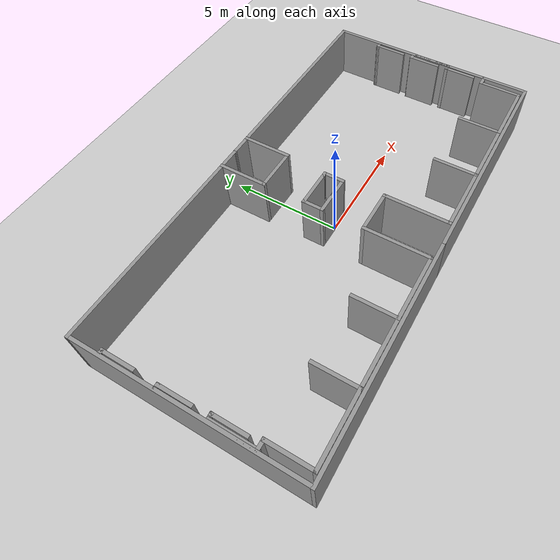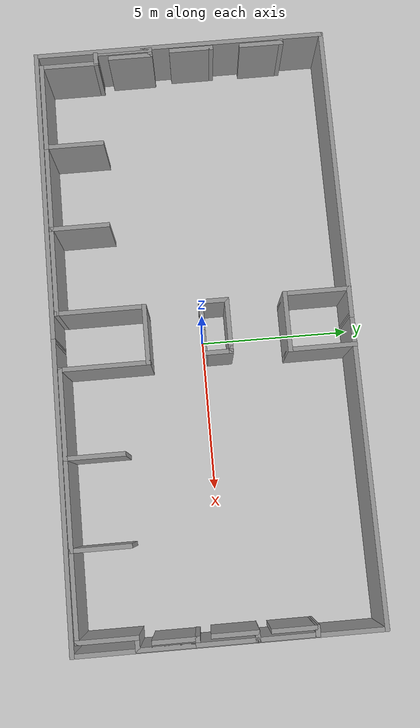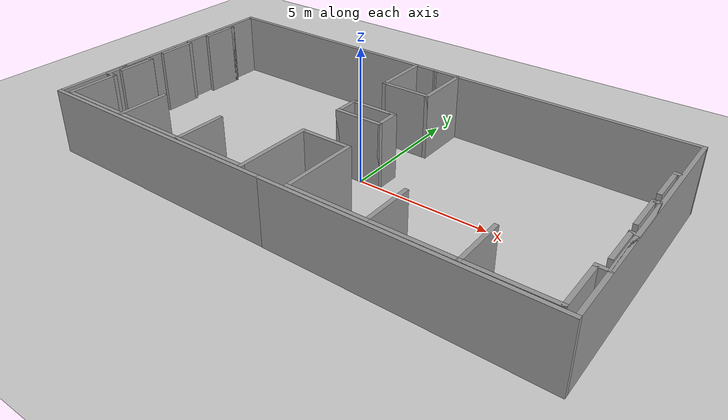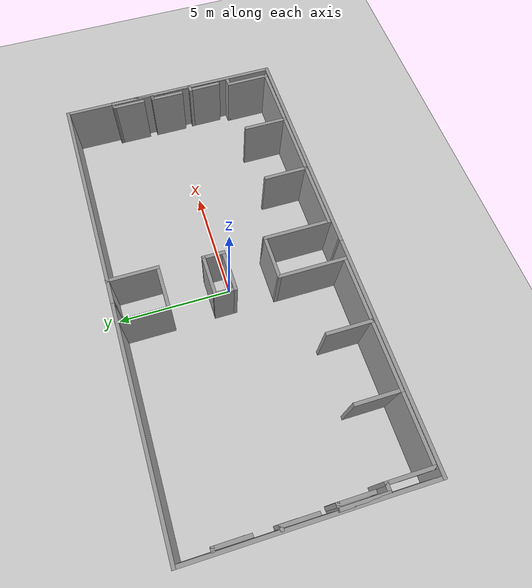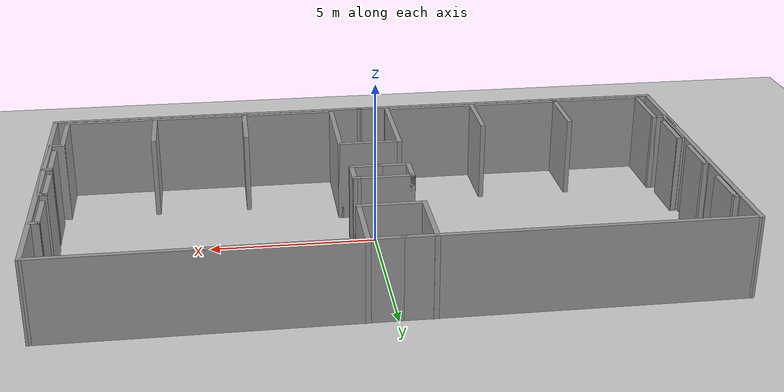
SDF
<sdf version="1.6">
 <world name="default">
  <light name="sun" type="directional">
   <pose>0 0 10 0 -0 0</pose>
   <diffuse>0.8 0.8 0.8 1</diffuse>
   <specular>0.2 0.2 0.2 1</specular>
   <attenuation>
    <range>1000</range>
    <constant>0.9</constant>
    <linear>0.01</linear>
    <quadratic>0.001</quadratic>
   </attenuation>
   <direction>-0.5 0.1 -0.9</direction>
  </light>
  <model name="ground_plane">
   <static>1</static>
   <link name="link">
    <collision name="collision">
     <geometry><plane><normal>0 0 1</normal><size>100 100</size></plane></geometry>
     <surface><friction><ode><mu>100</mu><mu2>50</mu2></ode></friction></surface>
    </collision>
    <visual name="visual">
     <cast_shadows>0</cast_shadows>
     <geometry><plane><normal>0 0 1</normal><size>100 100</size></plane></geometry>
     <material>
      <script><uri>file://media/materials/scripts/gazebo.material</uri><name>Gazebo/Grey</name></script>
     </material>
    </visual>
   </link>
  </model>
  <gravity>0 0 -9.8</gravity>
  <magnetic_field>6e-06 2.3e-05 -4.2e-05</magnetic_field>
  <atmosphere type="adiabatic"/>
  <physics name="default_physics" default="0" type="ode">
   <max_step_size>0.001</max_step_size>
   <real_time_factor>1</real_time_factor>
   <real_time_update_rate>1000</real_time_update_rate>
  </physics>
  <scene><ambient>0.4 0.4 0.4 1</ambient><background>0.7 0.7 0.7 1</background><shadows>1</shadows></scene>
  <spherical_coordinates>
   <surface_model>EARTH_WGS84</surface_model>
   <latitude_deg>0</latitude_deg>
   <longitude_deg>0</longitude_deg>
   <elevation>0</elevation>
   <heading_deg>0</heading_deg>
  </spherical_coordinates>
  <model name="work_layout_v2">
   <pose>-0.0885 0.037325 0 0 -0 0</pose>
   <link name="Wall_138">
    <collision name="Wall_138_Collision">
     <geometry><box><size>3 0.15 2.5</size></box></geometry>
     <pose>0 0 1.25 0 -0 0</pose>
    </collision>
    <visual name="Wall_138_Visual">
     <pose>0 0 1.25 0 -0 0</pose>
     <geometry><box><size>3 0.15 2.5</size></box></geometry>
     <material>
      <script><uri>file://media/materials/scripts/gazebo.material</uri><name>Gazebo/Grey</name></script>
      <ambient>1 1 1 1</ambient>
     </material>
     <meta><layer>0</layer></meta>
    </visual>
    <pose>2.38675 -4.70074 0 0 -0 0</pose>
   </link>
   <link name="Wall_139">
    <collision name="Wall_139_Collision">
     <geometry><box><size>2 0.15 2.5</size></box></geometry>
     <pose>0 0 1.25 0 -0 0</pose>
    </collision>
    <visual name="Wall_139_Visual">
     <pose>0 0 1.25 0 -0 0</pose>
     <geometry><box><size>2 0.15 2.5</size></box></geometry>
     <material>
      <script><uri>file://media/materials/scripts/gazebo.material</uri><name>Gazebo/Grey</name></script>
      <ambient>1 1 1 1</ambient>
     </material>
     <meta><layer>0</layer></meta>
    </visual>
    <pose>3.81175 -3.77574 0 0 -0 1.5708</pose>
   </link>
   <link name="Wall_141">
    <collision name="Wall_141_Collision">
     <geometry><box><size>3.0218 0.15 2.5</size></box></geometry>
     <pose>0 0 1.25 0 -0 0</pose>
    </collision>
    <visual name="Wall_141_Visual">
     <pose>0 0 1.25 0 -0 0</pose>
     <geometry><box><size>3.0218 0.15 2.5</size></box></geometry>
     <material>
      <script><uri>file://media/materials/scripts/gazebo.material</uri><name>Gazebo/Grey</name></script>
      <ambient>1 1 1 1</ambient>
     </material>
     <meta><layer>0</layer></meta>
    </visual>
    <pose>5.24765 -4.70009 0 0 -0 0.000449</pose>
   </link>
   <link name="Wall_142">
    <collision name="Wall_142_Collision">
     <geometry><box><size>2 0.15 2.5</size></box></geometry>
     <pose>0 0 1.25 0 -0 0</pose>
    </collision>
    <visual name="Wall_142_Visual">
     <pose>0 0 1.25 0 -0 0</pose>
     <geometry><box><size>2 0.15 2.5</size></box></geometry>
     <material>
      <script><uri>file://media/materials/scripts/gazebo.material</uri><name>Gazebo/Grey</name></script>
      <ambient>1 1 1 1</ambient>
     </material>
     <meta><layer>0</layer></meta>
    </visual>
    <pose>6.68355 -3.77445 0 0 -0 1.5708</pose>
   </link>
   <link name="Wall_144">
    <collision name="Wall_144_Collision">
     <geometry><box><size>2.91281 0.15 2.5</size></box></geometry>
     <pose>0 0 1.25 0 -0 0</pose>
    </collision>
    <visual name="Wall_144_Visual">
     <pose>0 0 1.25 0 -0 0</pose>
     <geometry><box><size>2.91281 0.15 2.5</size></box></geometry>
     <material>
      <script><uri>file://media/materials/scripts/gazebo.material</uri><name>Gazebo/Grey</name></script>
      <ambient>1 1 1 1</ambient>
     </material>
     <meta><layer>0</layer></meta>
    </visual>
    <pose>8.07585 -4.694 0 0 -0 0.003946</pose>
   </link>
   <link name="Wall_152">
    <collision name="Wall_152_Collision">
     <geometry><box><size>2 0.15 2.5</size></box></geometry>
     <pose>0 0 1.25 0 -0 0</pose>
    </collision>
    <visual name="Wall_152_Visual">
     <pose>0 0 1.25 0 -0 0</pose>
     <geometry><box><size>2 0.15 2.5</size></box></geometry>
     <material>
      <script><uri>file://media/materials/scripts/gazebo.material</uri><name>Gazebo/Grey</name></script>
      <ambient>1 1 1 1</ambient>
     </material>
     <meta><layer>0</layer></meta>
    </visual>
    <pose>9.45724 -3.76355 0 0 -0 1.5708</pose>
   </link>
   <link name="Wall_153">
    <collision name="Wall_153_Collision">
     <geometry><box><size>0.525103 0.15 2.5</size></box></geometry>
     <pose>0 0 1.25 0 -0 0</pose>
    </collision>
    <visual name="Wall_153_Visual">
     <pose>0 0 1.25 0 -0 0</pose>
     <geometry><box><size>0.525103 0.15 2.5</size></box></geometry>
     <material>
      <script><uri>file://media/materials/scripts/gazebo.material</uri><name>Gazebo/Grey</name></script>
      <ambient>1 1 1 1</ambient>
     </material>
     <meta><layer>0</layer></meta>
    </visual>
    <pose>9.64479 -2.83854 0 0 -0 0</pose>
   </link>
   <link name="Wall_154">
    <collision name="Wall_154_Collision">
     <geometry><box><size>2 0.15 2.5</size></box></geometry>
     <pose>0 0 1.25 0 -0 0</pose>
    </collision>
    <visual name="Wall_154_Visual">
     <pose>0 0 1.25 0 -0 0</pose>
     <geometry><box><size>2 0.15 2.5</size></box></geometry>
     <material>
      <script><uri>file://media/materials/scripts/gazebo.material</uri><name>Gazebo/Grey</name></script>
      <ambient>1 1 1 1</ambient>
     </material>
     <meta><layer>0</layer></meta>
    </visual>
    <pose>9.83235 -1.90125 0 0 -0 1.5708</pose>
   </link>
   <link name="Wall_157">
    <collision name="Wall_157_Collision">
     <geometry><box><size>2 0.15 2.5</size></box></geometry>
     <pose>0 0 1.25 0 -0 0</pose>
    </collision>
    <visual name="Wall_157_Visual">
     <pose>0 0 1.25 0 -0 0</pose>
     <geometry><box><size>2 0.15 2.5</size></box></geometry>
     <material>
      <script><uri>file://media/materials/scripts/gazebo.material</uri><name>Gazebo/Grey</name></script>
      <ambient>1 1 1 1</ambient>
     </material>
     <meta><layer>0</layer></meta>
    </visual>
    <pose>9.83235 -1.90125 0 0 -0 1.5708</pose>
   </link>
   <link name="Wall_158">
    <collision name="Wall_158_Collision">
     <geometry><box><size>0.345676 0.15 2.5</size></box></geometry>
     <pose>0 0 1.25 0 -0 0</pose>
    </collision>
    <visual name="Wall_158_Visual">
     <pose>0 0 1.25 0 -0 0</pose>
     <geometry><box><size>0.345676 0.15 2.5</size></box></geometry>
     <material>
      <script><uri>file://media/materials/scripts/gazebo.material</uri><name>Gazebo/Grey</name></script>
      <ambient>1 1 1 1</ambient>
     </material>
     <meta><layer>0</layer></meta>
    </visual>
    <pose>9.73451 -0.976251 0 0 -0 3.14159</pose>
   </link>
   <link name="Wall_159">
    <collision name="Wall_159_Collision">
     <geometry><box><size>1.5 0.15 2.5</size></box></geometry>
     <pose>0 0 1.25 0 -0 0</pose>
    </collision>
    <visual name="Wall_159_Visual">
     <pose>0 0 1.25 0 -0 0</pose>
     <geometry><box><size>1.5 0.15 2.5</size></box></geometry>
     <material>
      <script><uri>file://media/materials/scripts/gazebo.material</uri><name>Gazebo/Grey</name></script>
      <ambient>1 1 1 1</ambient>
     </material>
     <meta><layer>0</layer></meta>
    </visual>
    <pose>9.6473 -1.65125 0 0 0 -1.5708</pose>
   </link>
   <link name="Wall_165">
    <collision name="Wall_165_Collision">
     <geometry><box><size>2 0.15 2.5</size></box></geometry>
     <pose>0 0 1.25 0 -0 0</pose>
    </collision>
    <visual name="Wall_165_Visual">
     <pose>0 0 1.25 0 -0 0</pose>
     <geometry><box><size>2 0.15 2.5</size></box></geometry>
     <material>
      <script><uri>file://media/materials/scripts/gazebo.material</uri><name>Gazebo/Grey</name></script>
      <ambient>1 1 1 1</ambient>
     </material>
     <meta><layer>0</layer></meta>
    </visual>
    <pose>9.83235 -0.051251 0 0 -0 1.5708</pose>
   </link>
   <link name="Wall_166">
    <collision name="Wall_166_Collision">
     <geometry><box><size>0.372432 0.15 2.5</size></box></geometry>
     <pose>0 0 1.25 0 -0 0</pose>
    </collision>
    <visual name="Wall_166_Visual">
     <pose>0 0 1.25 0 -0 0</pose>
     <geometry><box><size>0.372432 0.15 2.5</size></box></geometry>
     <material>
      <script><uri>file://media/materials/scripts/gazebo.material</uri><name>Gazebo/Grey</name></script>
      <ambient>1 1 1 1</ambient>
     </material>
     <meta><layer>0</layer></meta>
    </visual>
    <pose>9.72113 0.873749 0 0 -0 3.14159</pose>
   </link>
   <link name="Wall_167">
    <collision name="Wall_167_Collision">
     <geometry><box><size>1.5 0.15 2.5</size></box></geometry>
     <pose>0 0 1.25 0 -0 0</pose>
    </collision>
    <visual name="Wall_167_Visual">
     <pose>0 0 1.25 0 -0 0</pose>
     <geometry><box><size>1.5 0.15 2.5</size></box></geometry>
     <material>
      <script><uri>file://media/materials/scripts/gazebo.material</uri><name>Gazebo/Grey</name></script>
      <ambient>1 1 1 1</ambient>
     </material>
     <meta><layer>0</layer></meta>
    </visual>
    <pose>9.60991 0.188119 0 0 0 -1.5708</pose>
   </link>
   <link name="Wall_169">
    <collision name="Wall_169_Collision">
     <geometry><box><size>2 0.15 2.5</size></box></geometry>
     <pose>0 0 1.25 0 -0 0</pose>
    </collision>
    <visual name="Wall_169_Visual">
     <pose>0 0 1.25 0 -0 0</pose>
     <geometry><box><size>2 0.15 2.5</size></box></geometry>
     <material>
      <script><uri>file://media/materials/scripts/gazebo.material</uri><name>Gazebo/Grey</name></script>
      <ambient>1 1 1 1</ambient>
     </material>
     <meta><layer>0</layer></meta>
    </visual>
    <pose>9.83235 1.79875 0 0 -0 1.5708</pose>
   </link>
   <link name="Wall_170">
    <collision name="Wall_170_Collision">
     <geometry><box><size>0.362068 0.15 2.5</size></box></geometry>
     <pose>0 0 1.25 0 -0 0</pose>
    </collision>
    <visual name="Wall_170_Visual">
     <pose>0 0 1.25 0 -0 0</pose>
     <geometry><box><size>0.362068 0.15 2.5</size></box></geometry>
     <material>
      <script><uri>file://media/materials/scripts/gazebo.material</uri><name>Gazebo/Grey</name></script>
      <ambient>1 1 1 1</ambient>
     </material>
     <meta><layer>0</layer></meta>
    </visual>
    <pose>9.72644 2.72906 0 0 -0 3.09144</pose>
   </link>
   <link name="Wall_171">
    <collision name="Wall_171_Collision">
     <geometry><box><size>1.5 0.15 2.5</size></box></geometry>
     <pose>0 0 1.25 0 -0 0</pose>
    </collision>
    <visual name="Wall_171_Visual">
     <pose>0 0 1.25 0 -0 0</pose>
     <geometry><box><size>1.5 0.15 2.5</size></box></geometry>
     <material>
      <script><uri>file://media/materials/scripts/gazebo.material</uri><name>Gazebo/Grey</name></script>
      <ambient>1 1 1 1</ambient>
     </material>
     <meta><layer>0</layer></meta>
    </visual>
    <pose>9.62054 2.04875 0 0 0 -1.5708</pose>
   </link>
   <link name="Wall_21">
    <collision name="Wall_21_Collision">
     <geometry><box><size>10.0383 0.15 2.5</size></box></geometry>
     <pose>0 0 1.25 0 -0 0</pose>
    </collision>
    <visual name="Wall_21_Visual">
     <pose>0 0 1.25 0 -0 0</pose>
     <geometry><box><size>10.0383 0.15 2.5</size></box></geometry>
     <material>
      <script><uri>file://media/materials/scripts/gazebo.material</uri><name>Gazebo/Grey</name></script>
      <ambient>1 1 1 1</ambient>
     </material>
     <meta><layer>0</layer></meta>
    </visual>
    <pose>4.90587 4.8569 0 0 -0 0.00122</pose>
   </link>
   <link name="Wall_24">
    <collision name="Wall_24_Collision">
     <geometry><box><size>9.99154 0.15 2.5</size></box></geometry>
     <pose>0 0 1.25 0 -0 0</pose>
    </collision>
    <visual name="Wall_24_Visual">
     <pose>0 0 1.25 0 -0 0</pose>
     <geometry><box><size>9.99154 0.15 2.5</size></box></geometry>
     <material>
      <script><uri>file://media/materials/scripts/gazebo.material</uri><name>Gazebo/Grey</name></script>
      <ambient>1 1 1 1</ambient>
     </material>
     <meta><layer>0</layer></meta>
    </visual>
    <pose>4.9293 -4.86113 0 0 0 -0.000381</pose>
   </link>
   <link name="Wall_26">
    <collision name="Wall_26_Collision">
     <geometry><box><size>9.75 0.15 2.5</size></box></geometry>
     <pose>0 0 1.25 0 -0 0</pose>
    </collision>
    <visual name="Wall_26_Visual">
     <pose>0 0 1.25 0 -0 0</pose>
     <geometry><box><size>9.75 0.15 2.5</size></box></geometry>
     <material>
      <script><uri>file://media/materials/scripts/gazebo.material</uri><name>Gazebo/Grey</name></script>
      <ambient>1 1 1 1</ambient>
     </material>
     <meta><layer>0</layer></meta>
    </visual>
    <pose>9.85 0.062938 0 0 0 -1.5708</pose>
   </link>
   <link name="Wall_28">
    <collision name="Wall_28_Collision">
     <geometry><box><size>9.96177 0.15 2.5</size></box></geometry>
     <pose>0 0 1.25 0 -0 0</pose>
    </collision>
    <visual name="Wall_28_Visual">
     <pose>0 0 1.25 0 -0 0</pose>
     <geometry><box><size>9.96177 0.15 2.5</size></box></geometry>
     <material>
      <script><uri>file://media/materials/scripts/gazebo.material</uri><name>Gazebo/Grey</name></script>
      <ambient>1 1 1 1</ambient>
     </material>
     <meta><layer>0</layer></meta>
    </visual>
    <pose>-4.94412 4.8569 0 0 -0 3.14036</pose>
   </link>
   <link name="Wall_31">
    <collision name="Wall_31_Collision">
     <geometry><box><size>10.0087 0.15 2.5</size></box></geometry>
     <pose>0 0 1.25 0 -0 0</pose>
    </collision>
    <visual name="Wall_31_Visual">
     <pose>0 0 1.25 0 -0 0</pose>
     <geometry><box><size>10.0087 0.15 2.5</size></box></geometry>
     <material>
      <script><uri>file://media/materials/scripts/gazebo.material</uri><name>Gazebo/Grey</name></script>
      <ambient>1 1 1 1</ambient>
     </material>
     <meta><layer>0</layer></meta>
    </visual>
    <pose>-4.9207 -4.86113 0 0 0 -3.14121</pose>
   </link>
   <link name="Wall_33">
    <collision name="Wall_33_Collision">
     <geometry><box><size>9.75 0.15 2.5</size></box></geometry>
     <pose>0 0 1.25 0 -0 0</pose>
    </collision>
    <visual name="Wall_33_Visual">
     <pose>0 0 1.25 0 -0 0</pose>
     <geometry><box><size>9.75 0.15 2.5</size></box></geometry>
     <material>
      <script><uri>file://media/materials/scripts/gazebo.material</uri><name>Gazebo/Grey</name></script>
      <ambient>1 1 1 1</ambient>
     </material>
     <meta><layer>0</layer></meta>
    </visual>
    <pose>-9.85 0.062938 0 0 0 -1.5708</pose>
   </link>
   <link name="Wall_51">
    <collision name="Wall_51_Collision">
     <geometry><box><size>1 0.15 2.5</size></box></geometry>
     <pose>0 0 1.25 0 -0 0</pose>
    </collision>
    <visual name="Wall_51_Visual">
     <pose>0 0 1.25 0 -0 0</pose>
     <geometry><box><size>1 0.15 2.5</size></box></geometry>
     <material>
      <script><uri>file://media/materials/scripts/gazebo.material</uri><name>Gazebo/Grey</name></script>
      <ambient>1 1 1 1</ambient>
     </material>
     <meta><layer>0</layer></meta>
    </visual>
    <pose>0.386749 -0.000737 0 0 -0 0</pose>
   </link>
   <link name="Wall_53">
    <collision name="Wall_53_Collision">
     <geometry><box><size>1 0.15 2.5</size></box></geometry>
     <pose>0 0 1.25 0 -0 0</pose>
    </collision>
    <visual name="Wall_53_Visual">
     <pose>0 0 1.25 0 -0 0</pose>
     <geometry><box><size>1 0.15 2.5</size></box></geometry>
     <material>
      <script><uri>file://media/materials/scripts/gazebo.material</uri><name>Gazebo/Grey</name></script>
      <ambient>1 1 1 1</ambient>
     </material>
     <meta><layer>0</layer></meta>
    </visual>
    <pose>-0.463251 -0.000737 0 0 -0 3.14159</pose>
   </link>
   <link name="Wall_54">
    <collision name="Wall_54_Collision">
     <geometry><box><size>1 0.15 2.5</size></box></geometry>
     <pose>0 0 1.25 0 -0 0</pose>
    </collision>
    <visual name="Wall_54_Visual">
     <pose>0 0 1.25 0 -0 0</pose>
     <geometry><box><size>1 0.15 2.5</size></box></geometry>
     <material>
      <script><uri>file://media/materials/scripts/gazebo.material</uri><name>Gazebo/Grey</name></script>
      <ambient>1 1 1 1</ambient>
     </material>
     <meta><layer>0</layer></meta>
    </visual>
    <pose>-0.888251 0.424263 0 0 -0 1.5708</pose>
   </link>
   <link name="Wall_55">
    <collision name="Wall_55_Collision">
     <geometry><box><size>1.75 0.15 2.5</size></box></geometry>
     <pose>0 0 1.25 0 -0 0</pose>
    </collision>
    <visual name="Wall_55_Visual">
     <pose>0 0 1.25 0 -0 0</pose>
     <geometry><box><size>1.75 0.15 2.5</size></box></geometry>
     <material>
      <script><uri>file://media/materials/scripts/gazebo.material</uri><name>Gazebo/Grey</name></script>
      <ambient>1 1 1 1</ambient>
     </material>
     <meta><layer>0</layer></meta>
    </visual>
    <pose>-0.088251 0.849263 0 0 -0 0</pose>
   </link>
   <link name="Wall_56">
    <collision name="Wall_56_Collision">
     <geometry><box><size>0.25 0.15 2.5</size></box></geometry>
     <pose>0 0 1.25 0 -0 0</pose>
    </collision>
    <visual name="Wall_56_Visual">
     <pose>0 0 1.25 0 -0 0</pose>
     <geometry><box><size>0.25 0.15 2.5</size></box></geometry>
     <material>
      <script><uri>file://media/materials/scripts/gazebo.material</uri><name>Gazebo/Grey</name></script>
      <ambient>1 1 1 1</ambient>
     </material>
     <meta><layer>0</layer></meta>
    </visual>
    <pose>0.761749 0.849263 0 0 -0 0</pose>
   </link>
   <link name="Wall_57">
    <collision name="Wall_57_Collision">
     <geometry><box><size>1 0.15 2.5</size></box></geometry>
     <pose>0 0 1.25 0 -0 0</pose>
    </collision>
    <visual name="Wall_57_Visual">
     <pose>0 0 1.25 0 -0 0</pose>
     <geometry><box><size>1 0.15 2.5</size></box></geometry>
     <material>
      <script><uri>file://media/materials/scripts/gazebo.material</uri><name>Gazebo/Grey</name></script>
      <ambient>1 1 1 1</ambient>
     </material>
     <meta><layer>0</layer></meta>
    </visual>
    <pose>0.811749 0.424263 0 0 0 -1.5708</pose>
   </link>
   <link name="Wall_61">
    <collision name="Wall_61_Collision">
     <geometry><box><size>3 0.15 2.5</size></box></geometry>
     <pose>0 0 1.25 0 -0 0</pose>
    </collision>
    <visual name="Wall_61_Visual">
     <pose>0 0 1.25 0 -0 0</pose>
     <geometry><box><size>3 0.15 2.5</size></box></geometry>
     <material>
      <script><uri>file://media/materials/scripts/gazebo.material</uri><name>Gazebo/Grey</name></script>
      <ambient>1 1 1 1</ambient>
     </material>
     <meta><layer>0</layer></meta>
    </visual>
    <pose>-0.888251 -3.27574 0 0 0 -1.5708</pose>
   </link>
   <link name="Wall_63">
    <collision name="Wall_63_Collision">
     <geometry><box><size>2 0.15 2.5</size></box></geometry>
     <pose>0 0 1.25 0 -0 0</pose>
    </collision>
    <visual name="Wall_63_Visual">
     <pose>0 0 1.25 0 -0 0</pose>
     <geometry><box><size>2 0.15 2.5</size></box></geometry>
     <material>
      <script><uri>file://media/materials/scripts/gazebo.material</uri><name>Gazebo/Grey</name></script>
      <ambient>1 1 1 1</ambient>
     </material>
     <meta><layer>0</layer></meta>
    </visual>
    <pose>0.036749 -1.85074 0 0 -0 0</pose>
   </link>
   <link name="Wall_64">
    <collision name="Wall_64_Collision">
     <geometry><box><size>3 0.15 2.5</size></box></geometry>
     <pose>0 0 1.25 0 -0 0</pose>
    </collision>
    <visual name="Wall_64_Visual">
     <pose>0 0 1.25 0 -0 0</pose>
     <geometry><box><size>3 0.15 2.5</size></box></geometry>
     <material>
      <script><uri>file://media/materials/scripts/gazebo.material</uri><name>Gazebo/Grey</name></script>
      <ambient>1 1 1 1</ambient>
     </material>
     <meta><layer>0</layer></meta>
    </visual>
    <pose>0.961749 -3.27574 0 0 0 -1.5708</pose>
   </link>
   <link name="Wall_68">
    <collision name="Wall_68_Collision">
     <geometry><box><size>2.25 0.15 2.5</size></box></geometry>
     <pose>0 0 1.25 0 -0 0</pose>
    </collision>
    <visual name="Wall_68_Visual">
     <pose>0 0 1.25 0 -0 0</pose>
     <geometry><box><size>2.25 0.15 2.5</size></box></geometry>
     <material>
      <script><uri>file://media/materials/scripts/gazebo.material</uri><name>Gazebo/Grey</name></script>
      <ambient>1 1 1 1</ambient>
     </material>
     <meta><layer>0</layer></meta>
    </visual>
    <pose>-0.926916 3.80901 0 0 0 -1.5708</pose>
   </link>
   <link name="Wall_70">
    <collision name="Wall_70_Collision">
     <geometry><box><size>2 0.15 2.5</size></box></geometry>
     <pose>0 0 1.25 0 -0 0</pose>
    </collision>
    <visual name="Wall_70_Visual">
     <pose>0 0 1.25 0 -0 0</pose>
     <geometry><box><size>2 0.15 2.5</size></box></geometry>
     <material>
      <script><uri>file://media/materials/scripts/gazebo.material</uri><name>Gazebo/Grey</name></script>
      <ambient>1 1 1 1</ambient>
     </material>
     <meta><layer>0</layer></meta>
    </visual>
    <pose>-0.001916 2.75901 0 0 -0 0</pose>
   </link>
   <link name="Wall_71">
    <collision name="Wall_71_Collision">
     <geometry><box><size>2.25 0.15 2.5</size></box></geometry>
     <pose>0 0 1.25 0 -0 0</pose>
    </collision>
    <visual name="Wall_71_Visual">
     <pose>0 0 1.25 0 -0 0</pose>
     <geometry><box><size>2.25 0.15 2.5</size></box></geometry>
     <material>
      <script><uri>file://media/materials/scripts/gazebo.material</uri><name>Gazebo/Grey</name></script>
      <ambient>1 1 1 1</ambient>
     </material>
     <meta><layer>0</layer></meta>
    </visual>
    <pose>0.923084 3.80901 0 0 -0 1.5708</pose>
   </link>
   <link name="Wall_73">
    <collision name="Wall_73_Collision">
     <geometry><box><size>3 0.15 2.5</size></box></geometry>
     <pose>0 0 1.25 0 -0 0</pose>
    </collision>
    <visual name="Wall_73_Visual">
     <pose>0 0 1.25 0 -0 0</pose>
     <geometry><box><size>3 0.15 2.5</size></box></geometry>
     <material>
      <script><uri>file://media/materials/scripts/gazebo.material</uri><name>Gazebo/Grey</name></script>
      <ambient>1 1 1 1</ambient>
     </material>
     <meta><layer>0</layer></meta>
    </visual>
    <pose>-2.31325 -4.70074 0 0 -0 3.14159</pose>
   </link>
   <link name="Wall_74">
    <collision name="Wall_74_Collision">
     <geometry><box><size>2 0.15 2.5</size></box></geometry>
     <pose>0 0 1.25 0 -0 0</pose>
    </collision>
    <visual name="Wall_74_Visual">
     <pose>0 0 1.25 0 -0 0</pose>
     <geometry><box><size>2 0.15 2.5</size></box></geometry>
     <material>
      <script><uri>file://media/materials/scripts/gazebo.material</uri><name>Gazebo/Grey</name></script>
      <ambient>1 1 1 1</ambient>
     </material>
     <meta><layer>0</layer></meta>
    </visual>
    <pose>-3.73825 -3.77574 0 0 -0 1.5708</pose>
   </link>
   <link name="Wall_76">
    <collision name="Wall_76_Collision">
     <geometry><box><size>3 0.15 2.5</size></box></geometry>
     <pose>0 0 1.25 0 -0 0</pose>
    </collision>
    <visual name="Wall_76_Visual">
     <pose>0 0 1.25 0 -0 0</pose>
     <geometry><box><size>3 0.15 2.5</size></box></geometry>
     <material>
      <script><uri>file://media/materials/scripts/gazebo.material</uri><name>Gazebo/Grey</name></script>
      <ambient>1 1 1 1</ambient>
     </material>
     <meta><layer>0</layer></meta>
    </visual>
    <pose>-5.16325 -4.70074 0 0 -0 3.14159</pose>
   </link>
   <link name="Wall_77">
    <collision name="Wall_77_Collision">
     <geometry><box><size>2 0.15 2.5</size></box></geometry>
     <pose>0 0 1.25 0 -0 0</pose>
    </collision>
    <visual name="Wall_77_Visual">
     <pose>0 0 1.25 0 -0 0</pose>
     <geometry><box><size>2 0.15 2.5</size></box></geometry>
     <material>
      <script><uri>file://media/materials/scripts/gazebo.material</uri><name>Gazebo/Grey</name></script>
      <ambient>1 1 1 1</ambient>
     </material>
     <meta><layer>0</layer></meta>
    </visual>
    <pose>-6.58825 -3.77574 0 0 -0 1.5708</pose>
   </link>
   <link name="Wall_79">
    <collision name="Wall_79_Collision">
     <geometry><box><size>3 0.15 2.5</size></box></geometry>
     <pose>0 0 1.25 0 -0 0</pose>
    </collision>
    <visual name="Wall_79_Visual">
     <pose>0 0 1.25 0 -0 0</pose>
     <geometry><box><size>3 0.15 2.5</size></box></geometry>
     <material>
      <script><uri>file://media/materials/scripts/gazebo.material</uri><name>Gazebo/Grey</name></script>
      <ambient>1 1 1 1</ambient>
     </material>
     <meta><layer>0</layer></meta>
    </visual>
    <pose>-8.01325 -4.70074 0 0 -0 3.14159</pose>
   </link>
   <link name="Wall_80">
    <collision name="Wall_80_Collision">
     <geometry><box><size>2 0.15 2.5</size></box></geometry>
     <pose>0 0 1.25 0 -0 0</pose>
    </collision>
    <visual name="Wall_80_Visual">
     <pose>0 0 1.25 0 -0 0</pose>
     <geometry><box><size>2 0.15 2.5</size></box></geometry>
     <material>
      <script><uri>file://media/materials/scripts/gazebo.material</uri><name>Gazebo/Grey</name></script>
      <ambient>1 1 1 1</ambient>
     </material>
     <meta><layer>0</layer></meta>
    </visual>
    <pose>-9.43825 -3.77574 0 0 -0 1.5708</pose>
   </link>
   <link name="Wall_81">
    <collision name="Wall_81_Collision">
     <geometry><box><size>0.467481 0.15 2.5</size></box></geometry>
     <pose>0 0 1.25 0 -0 0</pose>
    </collision>
    <visual name="Wall_81_Visual">
     <pose>0 0 1.25 0 -0 0</pose>
     <geometry><box><size>0.467481 0.15 2.5</size></box></geometry>
     <material>
      <script><uri>file://media/materials/scripts/gazebo.material</uri><name>Gazebo/Grey</name></script>
      <ambient>1 1 1 1</ambient>
     </material>
     <meta><layer>0</layer></meta>
    </visual>
    <pose>-9.59699 -2.85074 0 0 -0 3.14159</pose>
   </link>
   <link name="Wall_83">
    <collision name="Wall_83_Collision">
     <geometry><box><size>2 0.15 2.5</size></box></geometry>
     <pose>0 0 1.25 0 -0 0</pose>
    </collision>
    <visual name="Wall_83_Visual">
     <pose>0 0 1.25 0 -0 0</pose>
     <geometry><box><size>2 0.15 2.5</size></box></geometry>
     <material>
      <script><uri>file://media/materials/scripts/gazebo.material</uri><name>Gazebo/Grey</name></script>
      <ambient>1 1 1 1</ambient>
     </material>
     <meta><layer>0</layer></meta>
    </visual>
    <pose>-9.77199 -1.92574 0 0 -0 1.5708</pose>
   </link>
   <link name="Wall_84">
    <collision name="Wall_84_Collision">
     <geometry><box><size>0.217481 0.15 2.5</size></box></geometry>
     <pose>0 0 1.25 0 -0 0</pose>
    </collision>
    <visual name="Wall_84_Visual">
     <pose>0 0 1.25 0 -0 0</pose>
     <geometry><box><size>0.217481 0.15 2.5</size></box></geometry>
     <material>
      <script><uri>file://media/materials/scripts/gazebo.material</uri><name>Gazebo/Grey</name></script>
      <ambient>1 1 1 1</ambient>
     </material>
     <meta><layer>0</layer></meta>
    </visual>
    <pose>-9.72199 -1.00074 0 0 -0 0</pose>
   </link>
   <link name="Wall_85">
    <collision name="Wall_85_Collision">
     <geometry><box><size>0.240386 0.15 2.5</size></box></geometry>
     <pose>0 0 1.25 0 -0 0</pose>
    </collision>
    <visual name="Wall_85_Visual">
     <pose>0 0 1.25 0 -0 0</pose>
     <geometry><box><size>0.240386 0.15 2.5</size></box></geometry>
     <material>
      <script><uri>file://media/materials/scripts/gazebo.material</uri><name>Gazebo/Grey</name></script>
      <ambient>1 1 1 1</ambient>
     </material>
     <meta><layer>0</layer></meta>
    </visual>
    <pose>-9.64306 -0.996672 0 0 -0 0.089705</pose>
   </link>
   <link name="Wall_86">
    <collision name="Wall_86_Collision">
     <geometry><box><size>1.5 0.15 2.5</size></box></geometry>
     <pose>0 0 1.25 0 -0 0</pose>
    </collision>
    <visual name="Wall_86_Visual">
     <pose>0 0 1.25 0 -0 0</pose>
     <geometry><box><size>1.5 0.15 2.5</size></box></geometry>
     <material>
      <script><uri>file://media/materials/scripts/gazebo.material</uri><name>Gazebo/Grey</name></script>
      <ambient>1 1 1 1</ambient>
     </material>
     <meta><layer>0</layer></meta>
    </visual>
    <pose>-9.58973 -1.67574 0 0 0 -1.5708</pose>
   </link>
   <link name="Wall_92">
    <collision name="Wall_92_Collision">
     <geometry><box><size>1.5 0.15 2.5</size></box></geometry>
     <pose>0 0 1.25 0 -0 0</pose>
    </collision>
    <visual name="Wall_92_Visual">
     <pose>0 0 1.25 0 -0 0</pose>
     <geometry><box><size>1.5 0.15 2.5</size></box></geometry>
     <material>
      <script><uri>file://media/materials/scripts/gazebo.material</uri><name>Gazebo/Grey</name></script>
      <ambient>1 1 1 1</ambient>
     </material>
     <meta><layer>0</layer></meta>
    </visual>
    <pose>-9.68183 0.410914 0 0 -0 1.5708</pose>
   </link>
   <link name="Wall_93">
    <collision name="Wall_93_Collision">
     <geometry><box><size>0.25 0.15 2.5</size></box></geometry>
     <pose>0 0 1.25 0 -0 0</pose>
    </collision>
    <visual name="Wall_93_Visual">
     <pose>0 0 1.25 0 -0 0</pose>
     <geometry><box><size>0.25 0.15 2.5</size></box></geometry>
     <material>
      <script><uri>file://media/materials/scripts/gazebo.material</uri><name>Gazebo/Grey</name></script>
      <ambient>1 1 1 1</ambient>
     </material>
     <meta><layer>0</layer></meta>
    </visual>
    <pose>-9.73183 1.08591 0 0 -0 3.14159</pose>
   </link>
   <link name="Wall_97">
    <collision name="Wall_97_Collision">
     <geometry><box><size>1.5 0.15 2.5</size></box></geometry>
     <pose>0 0 1.25 0 -0 0</pose>
    </collision>
    <visual name="Wall_97_Visual">
     <pose>0 0 1.25 0 -0 0</pose>
     <geometry><box><size>1.5 0.15 2.5</size></box></geometry>
     <material>
      <script><uri>file://media/materials/scripts/gazebo.material</uri><name>Gazebo/Grey</name></script>
      <ambient>1 1 1 1</ambient>
     </material>
     <meta><layer>0</layer></meta>
    </visual>
    <pose>-9.67024 2.81369 0 0 -0 1.5708</pose>
   </link>
   <link name="Wall_98">
    <collision name="Wall_98_Collision">
     <geometry><box><size>0.198577 0.15 2.5</size></box></geometry>
     <pose>0 0 1.25 0 -0 0</pose>
    </collision>
    <visual name="Wall_98_Visual">
     <pose>0 0 1.25 0 -0 0</pose>
     <geometry><box><size>0.198577 0.15 2.5</size></box></geometry>
     <material>
      <script><uri>file://media/materials/scripts/gazebo.material</uri><name>Gazebo/Grey</name></script>
      <ambient>1 1 1 1</ambient>
     </material>
     <meta><layer>0</layer></meta>
    </visual>
    <pose>-9.69453 3.48869 0 0 -0 3.14159</pose>
   </link>
   <static>1</static>
  </model>
 </world>
</sdf>
